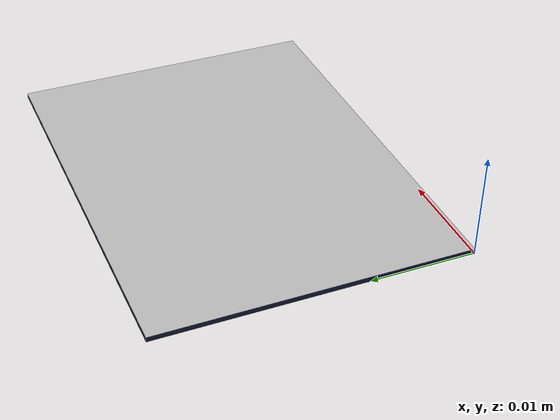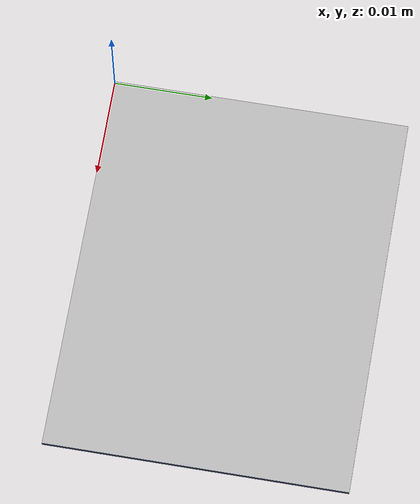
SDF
<?xml version="1.0" ?>
<sdf version="1.5">
  <model name="circuit">
    <static>true</static>
    <link name="link">
      <inertial>
  	<pose>2 2 0 0 0 0</pose>
        <mass>0.00001</mass>
        <inertia>
          <ixx>0.000166667</ixx>
          <iyy>0.000166667</iyy>
          <izz>0.000166667</izz>
        </inertia>
      </inertial>
      <collision name="collision">
        <geometry>
          <mesh>
            <uri>model://circuit/meshes/pcb.dae</uri>
          </mesh>
        </geometry>
      </collision>
      <visual name="visual">
        <geometry>
          <mesh>
            <uri>model://circuit/meshes/pcb.dae</uri>
          </mesh>
        </geometry>
      </visual>
    </link>
  </model>
</sdf>
